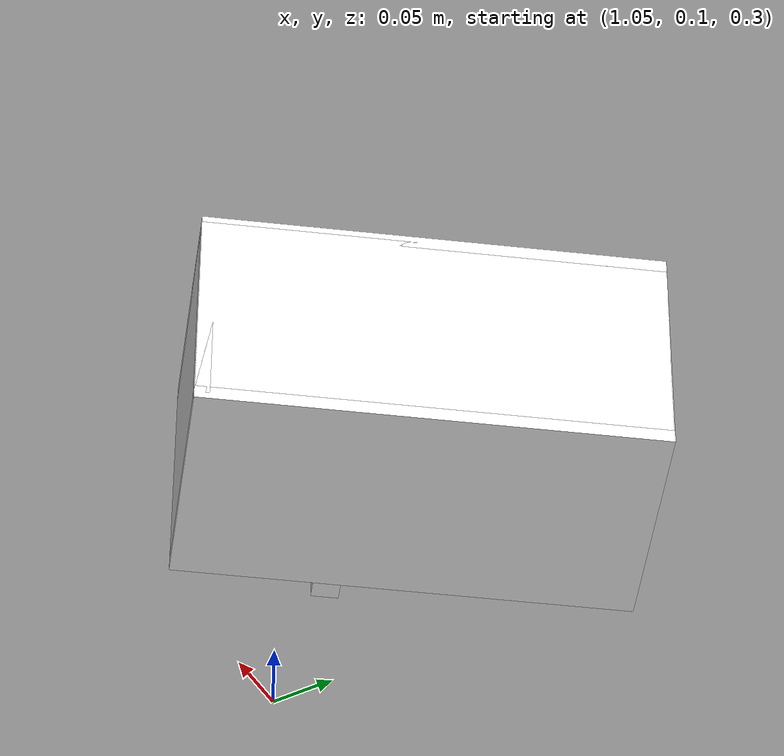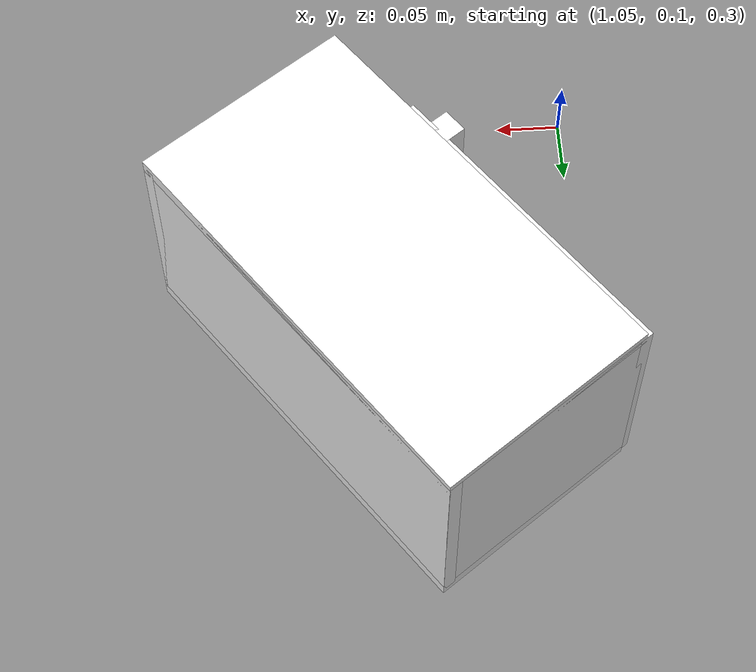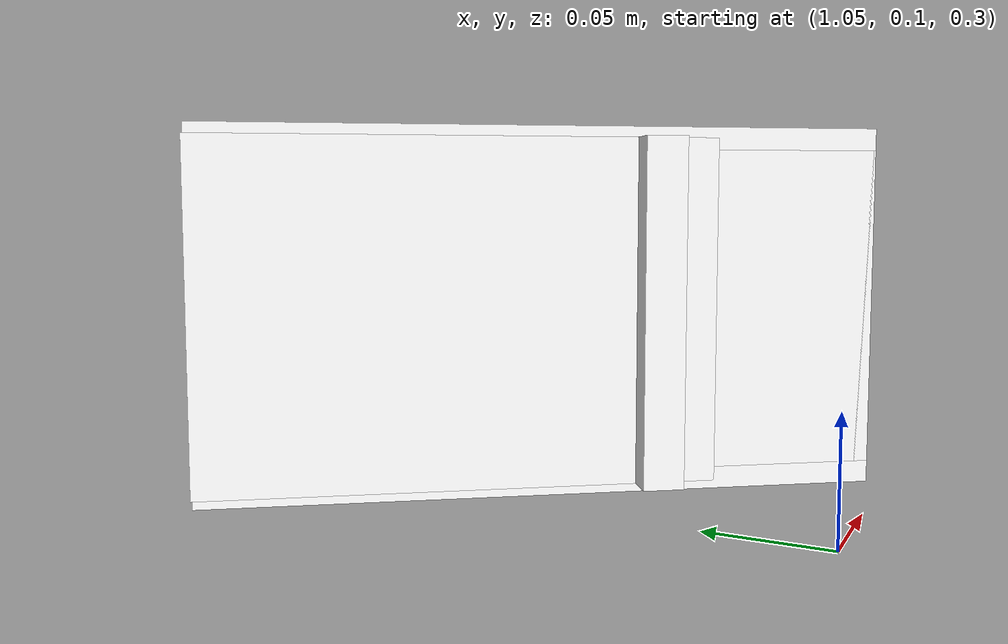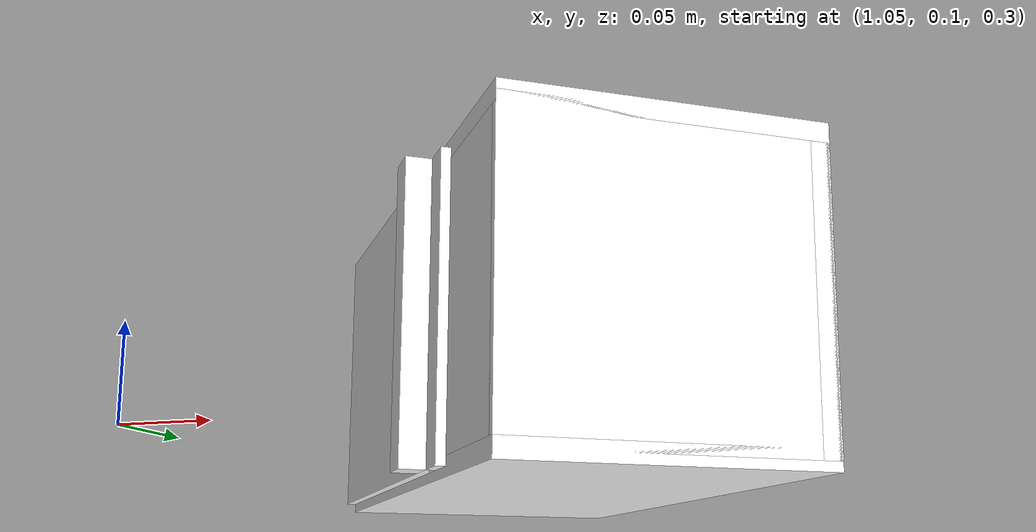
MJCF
<mujoco model="cabinet">
    <compiler angle="radian" eulerseq='zxy' />
    <option gravity = "0 0 0" />
    <option>
        <flag contact = "disable"/>
    </option>
    <statistic	extent="1.0" center="0.0 0.0 0.0"/>
    <visual>
        <map fogstart="3" fogend="5" force="0.1" znear=" 0.100000 " zfar=" 12.000000 "/>
    </visual>
    <size njmax="500" nconmax="100" />
    <actuator>
        <velocity joint="bottom_left_hinge" name="viva_revolution" kv='10'></velocity>
    </actuator>
    <asset>
        <texture builtin="flat" name="tabletex" height="32" width="32" rgb1="1 1 1" type="cube"></texture>
        <texture builtin="flat" name="objtex" height="32" width="32" rgb1="1 1 1" type="cube"></texture>
        <texture builtin="flat" name="handletex" height="32" width="32" rgb1="1 1 1" type="cube"></texture>
        <texture builtin="flat" name="wallpaper" height="32" width="32" rgb1="1 0 0" type="cube"></texture>
        <texture builtin="flat" name="kp" height="32" width="32" rgb1="1 1 1" type="cube"></texture>
        <material name="geomTable" shininess="0.03" specular="0.75" texture="tabletex"></material>
        <material name="geomObj" shininess="0.03" specular="0.75" texture="objtex"></material>
        <material name="geomHandle" shininess="0.03" specular="0.75" texture="handletex"></material>
        <material name="ax" shininess="0.03" specular="0.75" texture="wallpaper"></material>
        <material name="bg" shininess="0.03" specular="0.75" texture="wallpaper"></material>
        <material name="geomKeypad" shininess="0.03" specular="0.75" texture="kp"></material>
    </asset>
    <worldbody>
        <body name="cabinet_bottom" pos= " 1.202959 0.306161 0.285327 "  quat= " -0.311455 0.000000 0.000000 0.950261" >
            <inertial pos="0 0 0" mass="1" diaginertia="1 1 1" />
            <geom size= " 0.088777 0.167223 0.005442 "  type="box" material="geomObj" name="b"/>
            <body name="cabinet_left" pos= " 0.000000 -0.161781 0.084189 " >
                <inertial pos="0 0 0" mass="1" diaginertia="1 1 1" />
                <geom size= " 0.088777 0.005442 0.084189 "  type="box" material="geomObj" name="c" />
            </body>
            <body name="cabinet_right" pos= " 0.000000 0.161781 0.084189 " >
                <inertial pos="0 0 0" mass="1" diaginertia="1 1 1" />
                <geom size= " 0.088777 0.005442 0.084189 "  type="box" material="geomObj" name="d" />
            </body>
            <body name="cabinet_top" pos= " 0.000000 0.000000 0.168377 " >
                <inertial pos="0 0 0" mass="1" diaginertia="1 1 1" />
                <geom size= " 0.088777 0.167223 0.005442 "  type="box" material="geomObj" name="e"/>
            </body>
            <body name="cabinet_back" pos= " -0.083335 0.000000 0.084189 "  >
                <inertial pos="0 0 0" mass="1" diaginertia="1 1 1" />
                <geom size= " 0.005442 0.167223 0.084189 "  type="box" material="geomObj" name="f" />
            </body>
            <body name="cabinet_keypad" pos= " 0.005442 0.124417 0.084189 " >
                <inertial pos="0 0 0" mass="1" diaginertia="1 1 1" />
                <geom size= " 0.083335 0.041806 0.078746 "  type="box" material="geomKeypad" name="keypizzlemynizzle" />
            </body>
            <body name="cabinet_left_hinge" pos= " 0.088777 -0.167223 0.084189 " >
                <inertial pos= " 0.000000 0.125417 0.000000 "  mass="1" diaginertia="1 1 1" />
                <joint name="bottom_left_hinge" type="hinge" pos="0 0 0" axis="0 0 1" limited="true" range= "-2.3 0"  />
                <geom size= " 0.005442 0.125417 0.084189 "  pos= " 0.000000 0.125417 0.000000 "  type="box" material="geomObj" name="g"/>
                <body name="handle_link" pos= " 0.010000 0.220835 0.000000 " >
                    <inertial pos="0 0 0" mass="1" diaginertia="1 1 1" />
                    <geom size= " 0.010000 0.010000 0.084189 "  type="box" material="geomHandle" name="h"/>
                </body>
            </body>
        </body>
        <body name="external_camera_body_0" pos="0.0 0 0.00" >
            <camera euler="-1.57 1.57 0.0" fovy=" 54.280851 " name="external_camera_0" pos="0.0 0 0"></camera>
            <inertial pos= " 0.00 0.0 0.000000 " mass="1" diaginertia="1 1 1" />
            <joint name="cam_j" pos="0.0 0 0" axis = "1 0 0" type="free" />
        </body>
    </worldbody>
</mujoco>
